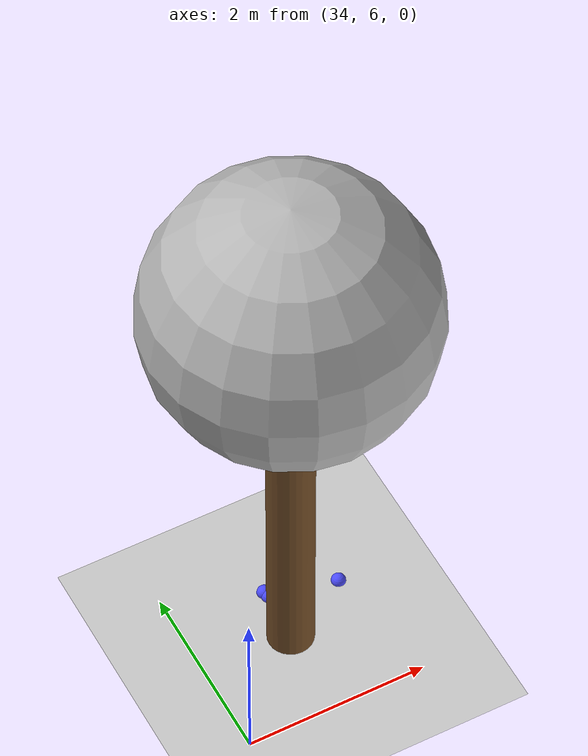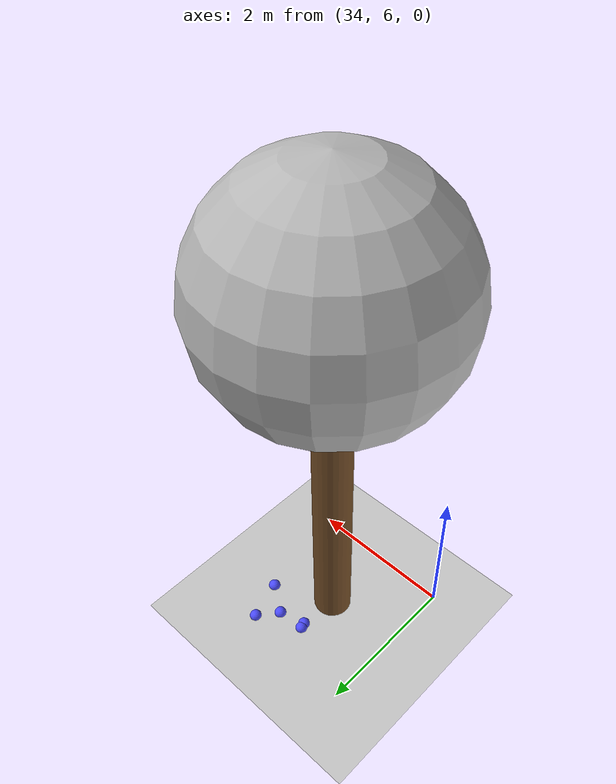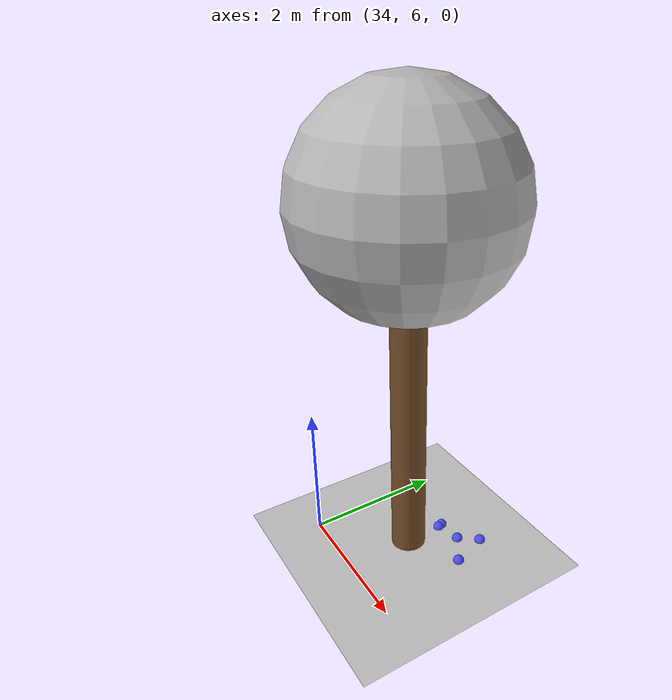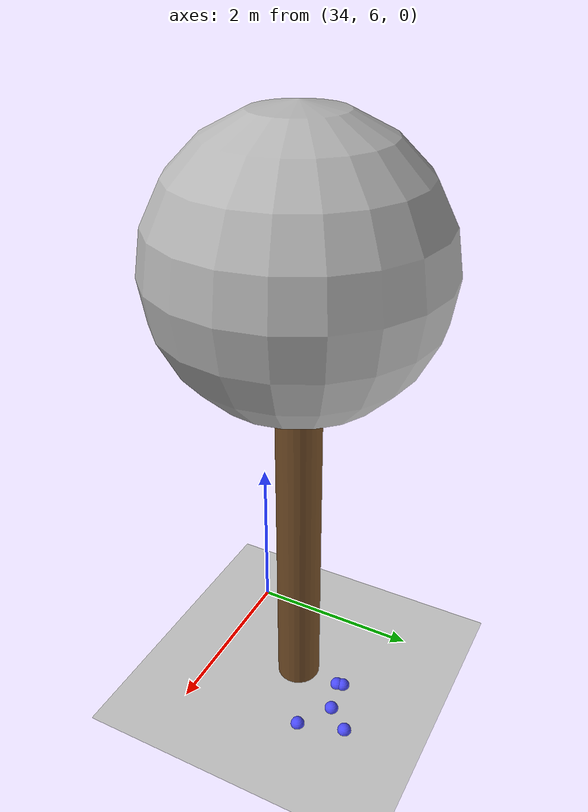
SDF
<sdf version="1.7">
 <world name="default">
  <model name="ground_plane">
   <static>1</static>
   <link name="link">
    <collision name="collision">
     <geometry><plane><normal>0 0 1</normal><size>100 100</size></plane></geometry>
     <surface>
      <contact><collide_bitmask>65535</collide_bitmask></contact>
      <friction><ode><mu>100</mu><mu2>50</mu2></ode></friction>
     </surface>
    </collision>
    <visual name="visual">
     <cast_shadows>0</cast_shadows>
     <geometry><plane><normal>0 0 1</normal><size>100 100</size></plane></geometry>
     <material>
      <script><uri>file://media/materials/scripts/gazebo.material</uri><name>Gazebo/Grey</name></script>
     </material>
    </visual>
   </link>
  </model>
  <model name="tree_simple_80">
   <static>1</static>
   <link name="link">
    <pose>0 0 0.1 0 -0 0</pose>
    <inertial>
     <mass>666</mass>
     <inertia>
      <ixx>0.0861167</ixx>
      <ixy>0</ixy>
      <ixz>0</ixz>
      <iyy>0.0861167</iyy>
      <iyz>0</iyz>
      <izz>0.0861167</izz>
     </inertia>
    </inertial>
    <collision name="collision_trunk">
     <pose>0 0 2 0 -0 0</pose>
     <geometry><cylinder><radius>0.25</radius><length>4</length></cylinder></geometry>
     <surface>
      <contact>
       <poissons_ratio>0.347</poissons_ratio>
       <elastic_modulus>8.8e+09</elastic_modulus>
       <ode><kp>100000</kp><kd>100</kd><max_vel>100</max_vel><min_depth>0.001</min_depth></ode>
      </contact>
      <friction>
       <torsional>
        <coefficient>1</coefficient>
        <use_patch_radius>0</use_patch_radius>
        <surface_radius>0.01</surface_radius>
       </torsional>
      </friction>
     </surface>
    </collision>
    <collision name="collision_treetop">
     <pose>0 0 5.2 0 -0 0</pose>
     <geometry><sphere><radius>1.5</radius></sphere></geometry>
     <surface>
      <contact>
       <poissons_ratio>0.347</poissons_ratio>
       <elastic_modulus>8.8e+09</elastic_modulus>
       <ode><kp>100000</kp><kd>100</kd><max_vel>100</max_vel><min_depth>0.001</min_depth></ode>
      </contact>
      <friction>
       <torsional>
        <coefficient>1</coefficient>
        <use_patch_radius>0</use_patch_radius>
        <surface_radius>0.01</surface_radius>
       </torsional>
      </friction>
     </surface>
    </collision>
    <visual name="trunk">
     <pose>0 0 2 0 -0 0</pose>
     <geometry><cylinder><radius>0.25</radius><length>4</length></cylinder></geometry>
     <material>
      <script>
       <uri>model://tree_simple/scripts</uri>
       <uri>model://tree_simple/materials/textures</uri>
       <name>TreeSimple/Trunk</name>
      </script>
     </material>
    </visual>
    <visual name="treetop">
     <pose>0 0 5.2 0 -0 0</pose>
     <geometry><sphere><radius>1.5</radius></sphere></geometry>
     <material>
      <script>
       <uri>model://tree_simple/scripts</uri>
       <uri>model://tree_simple/materials/textures</uri>
       <name>TreeSimple/Treetop</name>
      </script>
     </material>
    </visual>
   </link>
   <pose>35 7 -0.1 0 -0 0</pose>
  </model>
  <model name="seed_blue_179">
   <link name="link">
    <inertial>
     <mass>1</mass>
     <inertia><ixx>0.1</ixx><ixy>0</ixy><ixz>0</ixz><iyy>0.1</iyy><iyz>0</iyz><izz>0.1</izz></inertia>
    </inertial>
    <visual name="visual">
     <geometry><sphere><radius>0.08</radius></sphere></geometry>
     <material>
      <script><name>Gazebo/Grey</name><uri>file://media/materials/scripts/gazebo.material</uri></script>
      <shader type="pixel"><normal_map>__default__</normal_map></shader>
      <ambient>0.3 0.3 1 1</ambient>
      <diffuse>0.7 0.7 0.7 1</diffuse>
      <specular>0.01 0.01 0.01 1</specular>
      <emissive>0 0 0 1</emissive>
     </material>
    </visual>
    <collision name="collision">
     <geometry><sphere><radius>0.0005</radius></sphere></geometry>
     <surface>
      <friction>
       <ode><mu>1</mu><mu2>1</mu2><fdir1>0 0 0</fdir1><slip1>0</slip1><slip2>0</slip2></ode>
       <torsional>
        <coefficient>1</coefficient>
        <patch_radius>0</patch_radius>
        <surface_radius>0</surface_radius>
        <use_patch_radius>1</use_patch_radius>
        <ode><slip>0</slip></ode>
       </torsional>
      </friction>
      <bounce><restitution_coefficient>0</restitution_coefficient><threshold>1e+06</threshold></bounce>
      <contact>
       <collide_without_contact>0</collide_without_contact>
       <collide_without_contact_bitmask>1</collide_without_contact_bitmask>
       <collide_bitmask>1</collide_bitmask>
       <ode>
        <soft_cfm>0</soft_cfm>
        <soft_erp>0.2</soft_erp>
        <kp>1e+13</kp>
        <kd>1</kd>
        <max_vel>0.01</max_vel>
        <min_depth>0</min_depth>
       </ode>
       <bullet>
        <split_impulse>1</split_impulse>
        <split_impulse_penetration_threshold>-0.01</split_impulse_penetration_threshold>
        <soft_cfm>0</soft_cfm>
        <soft_erp>0.2</soft_erp>
        <kp>1e+13</kp>
        <kd>1</kd>
       </bullet>
      </contact>
     </surface>
    </collision>
   </link>
   <static>0</static>
   <pose>35.7643 7.37873 0.0005 0 -0 0</pose>
  </model>
  <model name="seed_blue_182">
   <link name="link">
    <inertial>
     <mass>1</mass>
     <inertia><ixx>0.1</ixx><ixy>0</ixy><ixz>0</ixz><iyy>0.1</iyy><iyz>0</iyz><izz>0.1</izz></inertia>
    </inertial>
    <visual name="visual">
     <geometry><sphere><radius>0.08</radius></sphere></geometry>
     <material>
      <script><name>Gazebo/Grey</name><uri>file://media/materials/scripts/gazebo.material</uri></script>
      <shader type="pixel"><normal_map>__default__</normal_map></shader>
      <ambient>0.3 0.3 1 1</ambient>
      <diffuse>0.7 0.7 0.7 1</diffuse>
      <specular>0.01 0.01 0.01 1</specular>
      <emissive>0 0 0 1</emissive>
     </material>
    </visual>
    <collision name="collision">
     <geometry><sphere><radius>0.0005</radius></sphere></geometry>
     <surface>
      <friction>
       <ode><mu>1</mu><mu2>1</mu2><fdir1>0 0 0</fdir1><slip1>0</slip1><slip2>0</slip2></ode>
       <torsional>
        <coefficient>1</coefficient>
        <patch_radius>0</patch_radius>
        <surface_radius>0</surface_radius>
        <use_patch_radius>1</use_patch_radius>
        <ode><slip>0</slip></ode>
       </torsional>
      </friction>
      <bounce><restitution_coefficient>0</restitution_coefficient><threshold>1e+06</threshold></bounce>
      <contact>
       <collide_without_contact>0</collide_without_contact>
       <collide_without_contact_bitmask>1</collide_without_contact_bitmask>
       <collide_bitmask>1</collide_bitmask>
       <ode>
        <soft_cfm>0</soft_cfm>
        <soft_erp>0.2</soft_erp>
        <kp>1e+13</kp>
        <kd>1</kd>
        <max_vel>0.01</max_vel>
        <min_depth>0</min_depth>
       </ode>
       <bullet>
        <split_impulse>1</split_impulse>
        <split_impulse_penetration_threshold>-0.01</split_impulse_penetration_threshold>
        <soft_cfm>0</soft_cfm>
        <soft_erp>0.2</soft_erp>
        <kp>1e+13</kp>
        <kd>1</kd>
       </bullet>
      </contact>
     </surface>
    </collision>
   </link>
   <static>0</static>
   <pose>35.3879 7.63209 0.0005 0 -0 0</pose>
  </model>
  <model name="seed_blue_184">
   <link name="link">
    <inertial>
     <mass>1</mass>
     <inertia><ixx>0.1</ixx><ixy>0</ixy><ixz>0</ixz><iyy>0.1</iyy><iyz>0</iyz><izz>0.1</izz></inertia>
    </inertial>
    <visual name="visual">
     <geometry><sphere><radius>0.08</radius></sphere></geometry>
     <material>
      <script><name>Gazebo/Grey</name><uri>file://media/materials/scripts/gazebo.material</uri></script>
      <shader type="pixel"><normal_map>__default__</normal_map></shader>
      <ambient>0.3 0.3 1 1</ambient>
      <diffuse>0.7 0.7 0.7 1</diffuse>
      <specular>0.01 0.01 0.01 1</specular>
      <emissive>0 0 0 1</emissive>
     </material>
    </visual>
    <collision name="collision">
     <geometry><sphere><radius>0.0005</radius></sphere></geometry>
     <surface>
      <friction>
       <ode><mu>1</mu><mu2>1</mu2><fdir1>0 0 0</fdir1><slip1>0</slip1><slip2>0</slip2></ode>
       <torsional>
        <coefficient>1</coefficient>
        <patch_radius>0</patch_radius>
        <surface_radius>0</surface_radius>
        <use_patch_radius>1</use_patch_radius>
        <ode><slip>0</slip></ode>
       </torsional>
      </friction>
      <bounce><restitution_coefficient>0</restitution_coefficient><threshold>1e+06</threshold></bounce>
      <contact>
       <collide_without_contact>0</collide_without_contact>
       <collide_without_contact_bitmask>1</collide_without_contact_bitmask>
       <collide_bitmask>1</collide_bitmask>
       <ode>
        <soft_cfm>0</soft_cfm>
        <soft_erp>0.2</soft_erp>
        <kp>1e+13</kp>
        <kd>1</kd>
        <max_vel>0.01</max_vel>
        <min_depth>0</min_depth>
       </ode>
       <bullet>
        <split_impulse>1</split_impulse>
        <split_impulse_penetration_threshold>-0.01</split_impulse_penetration_threshold>
        <soft_cfm>0</soft_cfm>
        <soft_erp>0.2</soft_erp>
        <kp>1e+13</kp>
        <kd>1</kd>
       </bullet>
      </contact>
     </surface>
    </collision>
   </link>
   <static>0</static>
   <pose>35.602 7.89692 0.0005 0 -0 0</pose>
  </model>
  <model name="seed_blue_185">
   <link name="link">
    <inertial>
     <mass>1</mass>
     <inertia><ixx>0.1</ixx><ixy>0</ixy><ixz>0</ixz><iyy>0.1</iyy><iyz>0</iyz><izz>0.1</izz></inertia>
    </inertial>
    <visual name="visual">
     <geometry><sphere><radius>0.08</radius></sphere></geometry>
     <material>
      <script><name>Gazebo/Grey</name><uri>file://media/materials/scripts/gazebo.material</uri></script>
      <shader type="pixel"><normal_map>__default__</normal_map></shader>
      <ambient>0.3 0.3 1 1</ambient>
      <diffuse>0.7 0.7 0.7 1</diffuse>
      <specular>0.01 0.01 0.01 1</specular>
      <emissive>0 0 0 1</emissive>
     </material>
    </visual>
    <collision name="collision">
     <geometry><sphere><radius>0.0005</radius></sphere></geometry>
     <surface>
      <friction>
       <ode><mu>1</mu><mu2>1</mu2><fdir1>0 0 0</fdir1><slip1>0</slip1><slip2>0</slip2></ode>
       <torsional>
        <coefficient>1</coefficient>
        <patch_radius>0</patch_radius>
        <surface_radius>0</surface_radius>
        <use_patch_radius>1</use_patch_radius>
        <ode><slip>0</slip></ode>
       </torsional>
      </friction>
      <bounce><restitution_coefficient>0</restitution_coefficient><threshold>1e+06</threshold></bounce>
      <contact>
       <collide_without_contact>0</collide_without_contact>
       <collide_without_contact_bitmask>1</collide_without_contact_bitmask>
       <collide_bitmask>1</collide_bitmask>
       <ode>
        <soft_cfm>0</soft_cfm>
        <soft_erp>0.2</soft_erp>
        <kp>1e+13</kp>
        <kd>1</kd>
        <max_vel>0.01</max_vel>
        <min_depth>0</min_depth>
       </ode>
       <bullet>
        <split_impulse>1</split_impulse>
        <split_impulse_penetration_threshold>-0.01</split_impulse_penetration_threshold>
        <soft_cfm>0</soft_cfm>
        <soft_erp>0.2</soft_erp>
        <kp>1e+13</kp>
        <kd>1</kd>
       </bullet>
      </contact>
     </surface>
    </collision>
   </link>
   <static>0</static>
   <pose>35.0294 7.53622 0.0005 0 -0 0</pose>
  </model>
  <model name="seed_blue_186">
   <link name="link">
    <inertial>
     <mass>1</mass>
     <inertia><ixx>0.1</ixx><ixy>0</ixy><ixz>0</ixz><iyy>0.1</iyy><iyz>0</iyz><izz>0.1</izz></inertia>
    </inertial>
    <visual name="visual">
     <geometry><sphere><radius>0.08</radius></sphere></geometry>
     <material>
      <script><name>Gazebo/Grey</name><uri>file://media/materials/scripts/gazebo.material</uri></script>
      <shader type="pixel"><normal_map>__default__</normal_map></shader>
      <ambient>0.3 0.3 1 1</ambient>
      <diffuse>0.7 0.7 0.7 1</diffuse>
      <specular>0.01 0.01 0.01 1</specular>
      <emissive>0 0 0 1</emissive>
     </material>
    </visual>
    <collision name="collision">
     <geometry><sphere><radius>0.0005</radius></sphere></geometry>
     <surface>
      <friction>
       <ode><mu>1</mu><mu2>1</mu2><fdir1>0 0 0</fdir1><slip1>0</slip1><slip2>0</slip2></ode>
       <torsional>
        <coefficient>1</coefficient>
        <patch_radius>0</patch_radius>
        <surface_radius>0</surface_radius>
        <use_patch_radius>1</use_patch_radius>
        <ode><slip>0</slip></ode>
       </torsional>
      </friction>
      <bounce><restitution_coefficient>0</restitution_coefficient><threshold>1e+06</threshold></bounce>
      <contact>
       <collide_without_contact>0</collide_without_contact>
       <collide_without_contact_bitmask>1</collide_without_contact_bitmask>
       <collide_bitmask>1</collide_bitmask>
       <ode>
        <soft_cfm>0</soft_cfm>
        <soft_erp>0.2</soft_erp>
        <kp>1e+13</kp>
        <kd>1</kd>
        <max_vel>0.01</max_vel>
        <min_depth>0</min_depth>
       </ode>
       <bullet>
        <split_impulse>1</split_impulse>
        <split_impulse_penetration_threshold>-0.01</split_impulse_penetration_threshold>
        <soft_cfm>0</soft_cfm>
        <soft_erp>0.2</soft_erp>
        <kp>1e+13</kp>
        <kd>1</kd>
       </bullet>
      </contact>
     </surface>
    </collision>
   </link>
   <static>0</static>
   <pose>35.0117 7.60413 0.0005 0 -0 0</pose>
  </model>
 </world>
</sdf>
